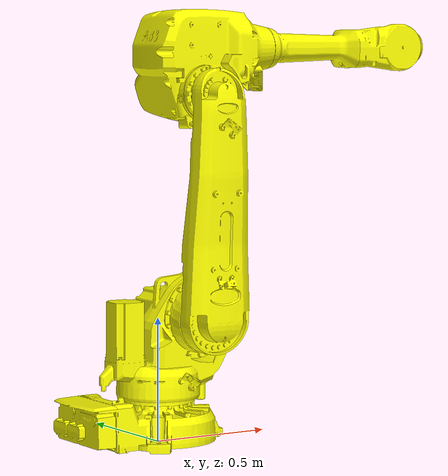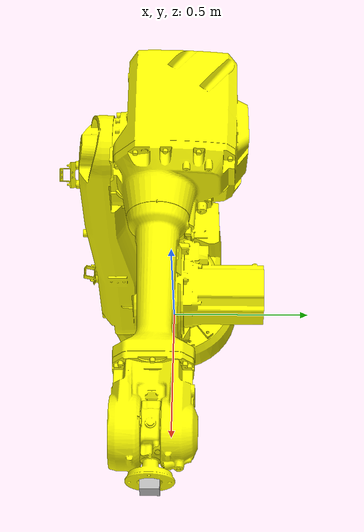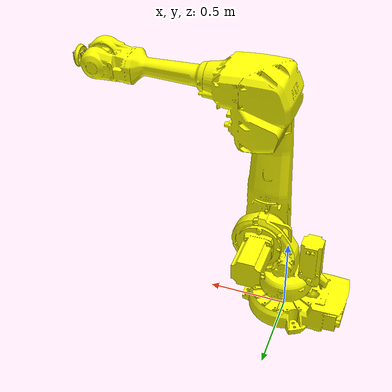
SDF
<sdf version='1.11'>
  <model name='abb_irb4600_60_205'>
    <link name='base_link'>
      <inertial>
        <pose>0 0 0 0 0 0</pose>
        <mass>10</mass>
        <inertia>
          <ixx>0.20830000000000001</ixx>
          <ixy>0</ixy>
          <ixz>0</ixz>
          <iyy>0.20830000000000001</iyy>
          <iyz>0</iyz>
          <izz>0.33329999999999999</izz>
        </inertia>
      </inertial>
      <collision name='base_link_fixed_joint_lump__collision_collision'>
        <pose>0 0 0 0 0 0</pose>
        <geometry>
          <mesh>
            <scale>1 1 1</scale>
            <uri>model://abb_irb4600_support/meshes/irb4600/collision/base_link.stl</uri>
          </mesh>
        </geometry>
      </collision>
      <visual name='base_link_fixed_joint_lump__visual_visual'>
        <pose>0 0 0 0 0 0</pose>
        <geometry>
          <mesh>
            <scale>1 1 1</scale>
            <uri>model://abb_irb4600_support/meshes/irb4600/visual/base_link.dae</uri>
          </mesh>
        </geometry>
        <material>
          <diffuse>1 1 0 1</diffuse>
          <ambient>1 1 0 1</ambient>
        </material>
      </visual>
    </link>
    <joint name='joint_1' type='revolute'>
      <pose relative_to='base_link'>0 0 0.495 0 0 0</pose>
      <parent>base_link</parent>
      <child>link_1</child>
      <axis>
        <xyz>0 0 1</xyz>
        <limit>
          <lower>-15</lower>
          <upper>15</upper>
          <effort>1000</effort>
          <velocity>30</velocity>
        </limit>
        <dynamics>
          <damping>1</damping>
          <friction>100</friction>
          <spring_reference>0</spring_reference>
          <spring_stiffness>0</spring_stiffness>
        </dynamics>
      </axis>
    </joint>
    <link name='link_1'>
      <pose relative_to='joint_1'>0 0 0 0 0 0</pose>
      <inertial>
        <pose>0 0 0 0 0 0</pose>
        <mass>1</mass>
        <inertia>
          <ixx>0.20830000000000001</ixx>
          <ixy>0</ixy>
          <ixz>0</ixz>
          <iyy>0.20830000000000001</iyy>
          <iyz>0</iyz>
          <izz>0.33329999999999999</izz>
        </inertia>
      </inertial>
      <collision name='link_1_fixed_joint_lump__collision_collision'>
        <pose>0 0 0 0 0 0</pose>
        <geometry>
          <mesh>
            <scale>1 1 1</scale>
            <uri>model://abb_irb4600_support/meshes/irb4600/collision/link_1.stl</uri>
          </mesh>
        </geometry>
      </collision>
      <visual name='link_1_fixed_joint_lump__visual_visual'>
        <pose>0 0 0 0 0 0</pose>
        <geometry>
          <mesh>
            <scale>1 1 1</scale>
            <uri>model://abb_irb4600_support/meshes/irb4600/visual/link_1.dae</uri>
          </mesh>
        </geometry>
        <material>
          <diffuse>1 1 0 1</diffuse>
          <ambient>1 1 0 1</ambient>
        </material>
      </visual>
    </link>
    <joint name='joint_2' type='revolute'>
      <pose relative_to='link_1'>0.17499999999999999 0 0 0 0 0</pose>
      <parent>link_1</parent>
      <child>link_2</child>
      <axis>
        <xyz>0 1 0</xyz>
        <limit>
          <lower>-15</lower>
          <upper>15</upper>
          <effort>1000</effort>
          <velocity>30</velocity>
        </limit>
        <dynamics>
          <damping>1</damping>
          <friction>100</friction>
          <spring_reference>0</spring_reference>
          <spring_stiffness>0</spring_stiffness>
        </dynamics>
      </axis>
    </joint>
    <link name='link_2'>
      <pose relative_to='joint_2'>0 0 0 0 0 0</pose>
      <inertial>
        <pose>0 0 0 0 0 0</pose>
        <mass>1</mass>
        <inertia>
          <ixx>0.20830000000000001</ixx>
          <ixy>0</ixy>
          <ixz>0</ixz>
          <iyy>0.20830000000000001</iyy>
          <iyz>0</iyz>
          <izz>0.33329999999999999</izz>
        </inertia>
      </inertial>
      <collision name='link_2_fixed_joint_lump__collision_collision'>
        <pose>0 0 0 0 0 0</pose>
        <geometry>
          <mesh>
            <scale>1 1 1</scale>
            <uri>model://abb_irb4600_support/meshes/irb4600_60_205/collision/link_2.stl</uri>
          </mesh>
        </geometry>
      </collision>
      <visual name='link_2_fixed_joint_lump__visual_visual'>
        <pose>0 0 0 0 0 0</pose>
        <geometry>
          <mesh>
            <scale>1 1 1</scale>
            <uri>model://abb_irb4600_support/meshes/irb4600_60_205/visual/link_2.dae</uri>
          </mesh>
        </geometry>
        <material>
          <diffuse>1 1 0 1</diffuse>
          <ambient>1 1 0 1</ambient>
        </material>
      </visual>
    </link>
    <joint name='joint_3' type='revolute'>
      <pose relative_to='link_2'>0 0 0.90000000000000002 0 0 0</pose>
      <parent>link_2</parent>
      <child>link_3</child>
      <axis>
        <xyz>0 1 0</xyz>
        <limit>
          <lower>-15</lower>
          <upper>15</upper>
          <effort>1000</effort>
          <velocity>30</velocity>
        </limit>
        <dynamics>
          <damping>1</damping>
          <friction>100</friction>
          <spring_reference>0</spring_reference>
          <spring_stiffness>0</spring_stiffness>
        </dynamics>
      </axis>
    </joint>
    <link name='link_3'>
      <pose relative_to='joint_3'>0 0 0 0 0 0</pose>
      <inertial>
        <pose>0 0 0 0 0 0</pose>
        <mass>1</mass>
        <inertia>
          <ixx>0.20830000000000001</ixx>
          <ixy>0</ixy>
          <ixz>0</ixz>
          <iyy>0.20830000000000001</iyy>
          <iyz>0</iyz>
          <izz>0.33329999999999999</izz>
        </inertia>
      </inertial>
      <collision name='link_3_fixed_joint_lump__collision_collision'>
        <pose>0 0 0 0 0 0</pose>
        <geometry>
          <mesh>
            <scale>1 1 1</scale>
            <uri>model://abb_irb4600_support/meshes/irb4600_60_205/collision/link_3.stl</uri>
          </mesh>
        </geometry>
      </collision>
      <visual name='link_3_fixed_joint_lump__visual_visual'>
        <pose>0 0 0 0 0 0</pose>
        <geometry>
          <mesh>
            <scale>1 1 1</scale>
            <uri>model://abb_irb4600_support/meshes/irb4600_60_205/visual/link_3.dae</uri>
          </mesh>
        </geometry>
        <material>
          <diffuse>1 1 0 1</diffuse>
          <ambient>1 1 0 1</ambient>
        </material>
      </visual>
    </link>
    <joint name='joint_4' type='revolute'>
      <pose relative_to='link_3'>0 0 0.17499999999999999 0 0 0</pose>
      <parent>link_3</parent>
      <child>link_4</child>
      <axis>
        <xyz>1 0 0</xyz>
        <limit>
          <lower>-15</lower>
          <upper>15</upper>
          <effort>1000</effort>
          <velocity>30</velocity>
        </limit>
        <dynamics>
          <damping>1</damping>
          <friction>100</friction>
          <spring_reference>0</spring_reference>
          <spring_stiffness>0</spring_stiffness>
        </dynamics>
      </axis>
    </joint>
    <link name='link_4'>
      <pose relative_to='joint_4'>0 0 0 0 0 0</pose>
      <inertial>
        <pose>0 0 0 0 0 0</pose>
        <mass>1</mass>
        <inertia>
          <ixx>0.20830000000000001</ixx>
          <ixy>0</ixy>
          <ixz>0</ixz>
          <iyy>0.20830000000000001</iyy>
          <iyz>0</iyz>
          <izz>0.33329999999999999</izz>
        </inertia>
      </inertial>
      <collision name='link_4_fixed_joint_lump__collision_collision'>
        <pose>0 0 0 0 0 0</pose>
        <geometry>
          <mesh>
            <scale>1 1 1</scale>
            <uri>model://abb_irb4600_support/meshes/irb4600_60_205/collision/link_4.stl</uri>
          </mesh>
        </geometry>
      </collision>
      <visual name='link_4_fixed_joint_lump__visual_visual'>
        <pose>0 0 0 0 0 0</pose>
        <geometry>
          <mesh>
            <scale>1 1 1</scale>
            <uri>model://abb_irb4600_support/meshes/irb4600_60_205/visual/link_4.dae</uri>
          </mesh>
        </geometry>
        <material>
          <diffuse>1 1 0 1</diffuse>
          <ambient>1 1 0 1</ambient>
        </material>
      </visual>
    </link>
    <joint name='joint_5' type='revolute'>
      <pose relative_to='link_4'>0.95999999999999996 0 0 0 0 0</pose>
      <parent>link_4</parent>
      <child>link_5</child>
      <axis>
        <xyz>0 1 0</xyz>
        <limit>
          <lower>-15</lower>
          <upper>15</upper>
          <effort>1000</effort>
          <velocity>30</velocity>
        </limit>
        <dynamics>
          <damping>1</damping>
          <friction>0</friction>
          <spring_reference>0</spring_reference>
          <spring_stiffness>0</spring_stiffness>
        </dynamics>
      </axis>
    </joint>
    <link name='link_5'>
      <pose relative_to='joint_5'>0 0 0 0 0 0</pose>
      <inertial>
        <pose>0 0 0 0 0 0</pose>
        <mass>1</mass>
        <inertia>
          <ixx>0.20830000000000001</ixx>
          <ixy>0</ixy>
          <ixz>0</ixz>
          <iyy>0.20830000000000001</iyy>
          <iyz>0</iyz>
          <izz>0.33329999999999999</izz>
        </inertia>
      </inertial>
      <collision name='link_5_fixed_joint_lump__collision_collision'>
        <pose>0 0 0 0 0 0</pose>
        <geometry>
          <mesh>
            <scale>1 1 1</scale>
            <uri>model://abb_irb4600_support/meshes/irb4600_60_205/collision/link_5.stl</uri>
          </mesh>
        </geometry>
      </collision>
      <visual name='link_5_fixed_joint_lump__visual_visual'>
        <pose>0 0 0 0 0 0</pose>
        <geometry>
          <mesh>
            <scale>1 1 1</scale>
            <uri>model://abb_irb4600_support/meshes/irb4600_60_205/visual/link_5.dae</uri>
          </mesh>
        </geometry>
        <material>
          <diffuse>1 1 0 1</diffuse>
          <ambient>1 1 0 1</ambient>
        </material>
      </visual>
    </link>
    <joint name='joint_6' type='revolute'>
      <pose relative_to='link_5'>0.13500000000000001 0 0 0 0 0</pose>
      <parent>link_5</parent>
      <child>link_6</child>
      <axis>
        <xyz>1 0 0</xyz>
        <limit>
          <lower>-15</lower>
          <upper>15</upper>
          <effort>1000</effort>
          <velocity>30</velocity>
        </limit>
        <dynamics>
          <damping>1</damping>
          <friction>100</friction>
          <spring_reference>0</spring_reference>
          <spring_stiffness>0</spring_stiffness>
        </dynamics>
      </axis>
    </joint>
    <link name='link_6'>
      <pose relative_to='joint_6'>0 0 0 0 0 0</pose>
      <inertial>
        <pose>0 0 0 0 0 0</pose>
        <mass>3</mass>
        <inertia>
          <ixx>0.74990000000000001</ixx>
          <ixy>0</ixy>
          <ixz>7.654042494670956e-18</ixz>
          <iyy>0.62490000000000001</iyy>
          <iyz>0</iyz>
          <izz>0.87490000000000001</izz>
        </inertia>
      </inertial>
      <collision name='link_6_fixed_joint_lump__collision_collision'>
        <pose>0 0 0 0 0 0</pose>
        <geometry>
          <mesh>
            <scale>1 1 1</scale>
            <uri>model://abb_irb4600_support/meshes/irb4600_60_205/collision/link_6.stl</uri>
          </mesh>
        </geometry>
      </collision>
      <collision name='link_6_fixed_joint_lump__flange_collision_1'>
        <pose>0 0 0 0 0 0</pose>
        <geometry>
          <box>
            <size>0.001 0.001 0.001</size>
          </box>
        </geometry>
      </collision>
      <collision name='link_6_fixed_joint_lump__tool_0_collision_2'>
        <pose>0 0 0 0 1.5707963267948966 0</pose>
        <geometry>
          <box>
            <size>0.050000000000000003 0.050000000000000003 0.050000000000000003</size>
          </box>
        </geometry>
      </collision>
      <visual name='link_6_fixed_joint_lump__visual_visual'>
        <pose>0 0 0 0 0 0</pose>
        <geometry>
          <mesh>
            <scale>1 1 1</scale>
            <uri>model://abb_irb4600_support/meshes/irb4600_60_205/visual/link_6.dae</uri>
          </mesh>
        </geometry>
        <material>
          <diffuse>1 1 0 1</diffuse>
          <ambient>1 1 0 1</ambient>
        </material>
      </visual>
      <visual name='link_6_fixed_joint_lump__flange_visual_1'>
        <pose>0 0 0 0 0 0</pose>
        <geometry>
          <box>
            <size>0.001 0.001 0.001</size>
          </box>
        </geometry>
      </visual>
      <visual name='link_6_fixed_joint_lump__tool_0_visual_2'>
        <pose>0 0 0 0 1.5707963267948966 0</pose>
        <geometry>
          <box>
            <size>0.050000000000000003 0.050000000000000003 0.050000000000000003</size>
          </box>
        </geometry>
      </visual>
    </link>
    <plugin name='gz_ros2_control::GazeboSimROS2ControlPlugin' filename='gz_ros2_control-system'>
      <parameters>/home/yjy/astar_proj/ros2_simulation/src/warehouse_manage/config/abb_irb4600_60_205.yaml</parameters>
    </plugin>
    <plugin name='gz::sim::systems::DetachableJoint' filename='gz-sim-detachable-joint-system'>
      <parent_link>tool_0</parent_link>
      <child_model>box</child_model>
      <child_link>base_link</child_link>
      <detach_topic>/B1/detach</detach_topic>
      <attach_topic>/B1/attach</attach_topic>
      <output_topic>/B1/state</output_topic>
    </plugin>
    <frame name='link_6-tool0' attached_to='flange'>
      <pose>0 0 0 0 1.5707963267948966 0</pose>
    </frame>
    <frame name='tool_0' attached_to='link_6-tool0'>
      <pose>0 0 0 0 0 0</pose>
    </frame>
    <frame name='joint_6-flange' attached_to='link_6'>
      <pose>0 0 0 0 0 0</pose>
    </frame>
    <frame name='flange' attached_to='joint_6-flange'>
      <pose>0 0 0 0 0 0</pose>
    </frame>
  </model>
</sdf>
